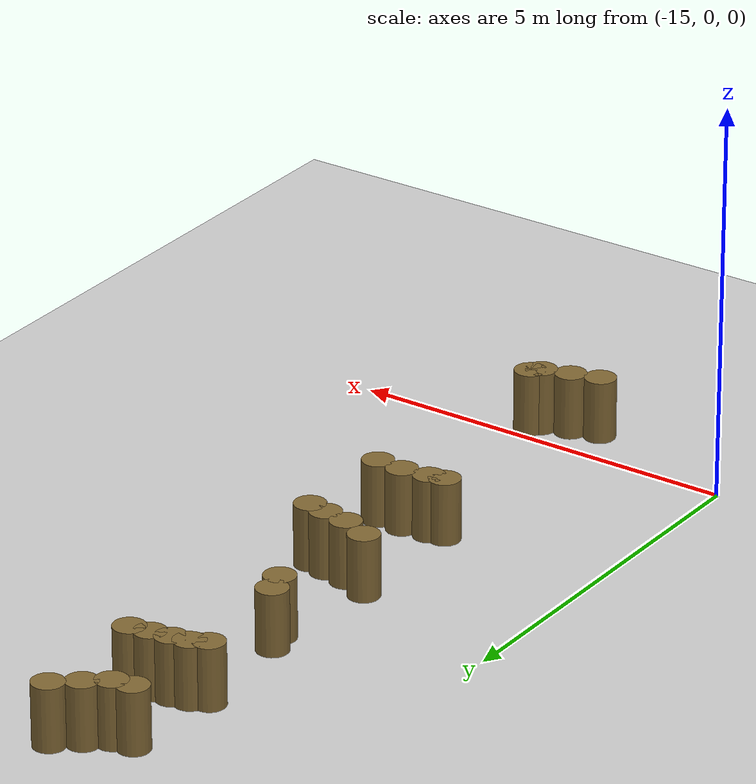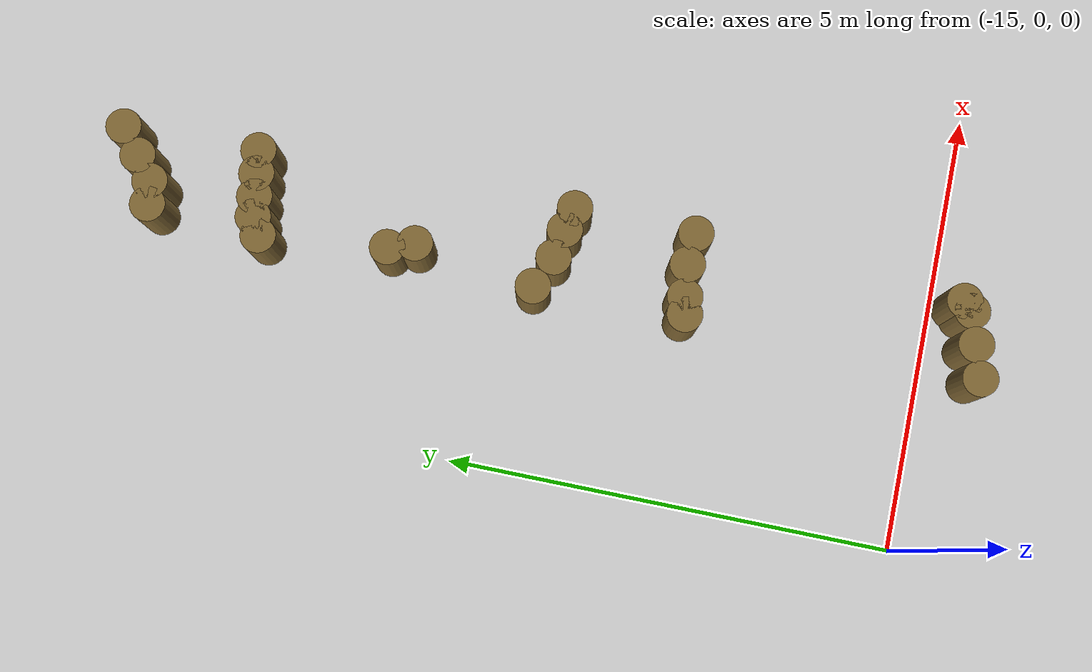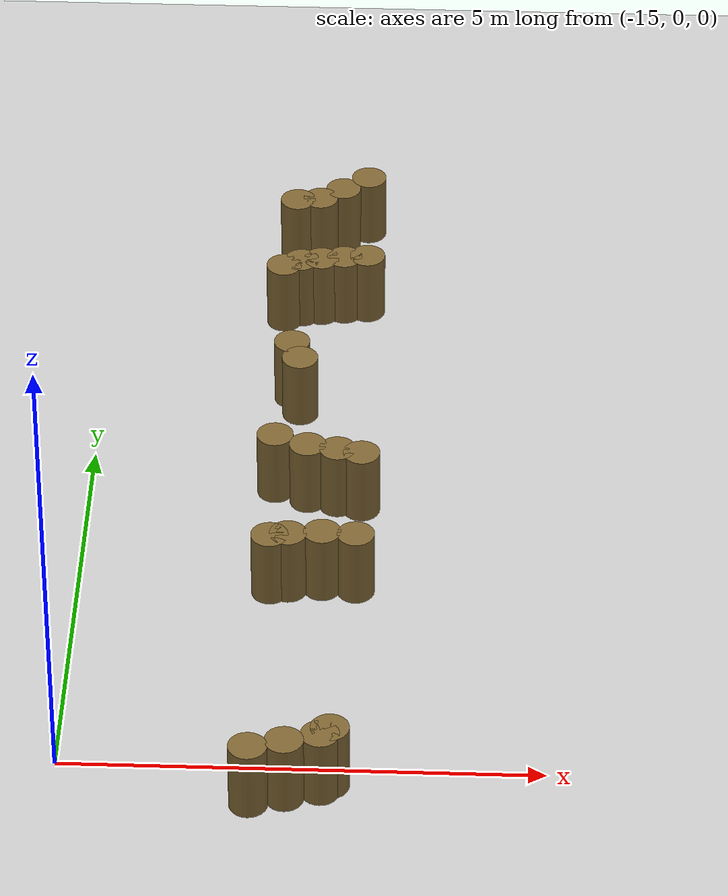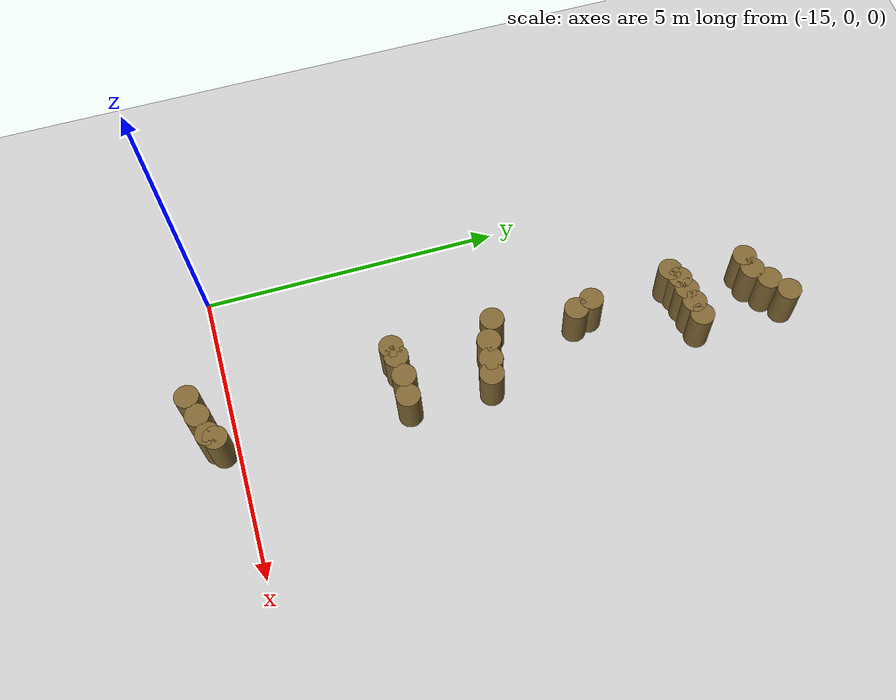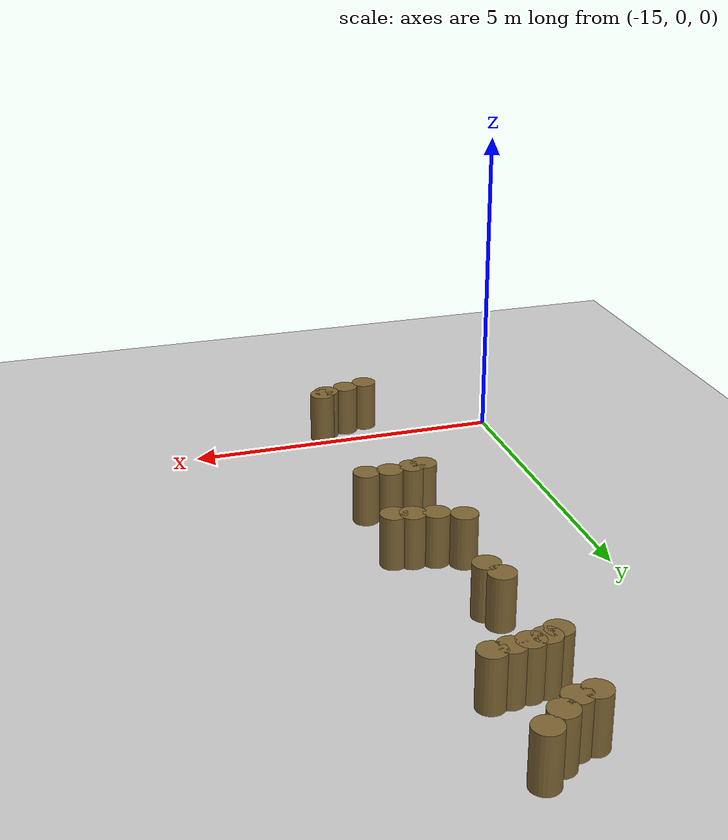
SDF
<sdf version="1.7">
 <world name="default">
  <model name="ground_plane">
   <static>1</static>
   <link name="link">
    <collision name="collision">
     <geometry><plane><normal>0 0 1</normal><size>100 100</size></plane></geometry>
     <surface><friction><ode><mu>100</mu><mu2>50</mu2></ode></friction></surface>
    </collision>
    <visual name="visual">
     <cast_shadows>0</cast_shadows>
     <geometry><plane><normal>0 0 1</normal><size>100 100</size></plane></geometry>
     <material>
      <script><uri>file://media/materials/scripts/gazebo.material</uri><name>Gazebo/Grey</name></script>
     </material>
    </visual>
   </link>
  </model>
  <model name="mini_cylinder_0_clone_0_clone_clone_clone_clone_3_clone_20_clone_4">
   <link name="link">
    <inertial>
     <mass>1</mass>
     <inertia><ixx>0.145833</ixx><ixy>0</ixy><ixz>0</ixz><iyy>0.145833</iyy><iyz>0</iyz><izz>0.125</izz></inertia>
    </inertial>
    <visual name="visual">
     <geometry><cylinder><radius>0.2</radius><length>0.8</length></cylinder></geometry>
     <material>
      <script><name>Gazebo/Grey</name><uri>file://media/materials/scripts/gazebo.material</uri></script>
      <shader type="vertex"><normal_map>__default__</normal_map></shader>
      <ambient>0.5 0.4 0.2 1</ambient>
      <diffuse>0.7 0.7 0.7 1</diffuse>
      <specular>0.01 0.01 0.01 1</specular>
      <emissive>0 0 0 1</emissive>
     </material>
    </visual>
    <collision name="collision">
     <geometry><cylinder><radius>0.2</radius><length>0.8</length></cylinder></geometry>
     <surface>
      <friction>
       <ode><mu>1</mu><mu2>1</mu2><fdir1>0 0 0</fdir1><slip1>0</slip1><slip2>0</slip2></ode>
       <torsional>
        <coefficient>1</coefficient>
        <patch_radius>0</patch_radius>
        <surface_radius>0</surface_radius>
        <use_patch_radius>1</use_patch_radius>
        <ode><slip>0</slip></ode>
       </torsional>
      </friction>
      <bounce><restitution_coefficient>0</restitution_coefficient><threshold>1e+06</threshold></bounce>
      <contact>
       <collide_without_contact>0</collide_without_contact>
       <collide_without_contact_bitmask>1</collide_without_contact_bitmask>
       <collide_bitmask>1</collide_bitmask>
       <ode>
        <soft_cfm>0</soft_cfm>
        <soft_erp>0.2</soft_erp>
        <kp>1e+13</kp>
        <kd>1</kd>
        <max_vel>0.01</max_vel>
        <min_depth>0</min_depth>
       </ode>
       <bullet>
        <split_impulse>1</split_impulse>
        <split_impulse_penetration_threshold>-0.01</split_impulse_penetration_threshold>
        <soft_cfm>0</soft_cfm>
        <soft_erp>0.2</soft_erp>
        <kp>1e+13</kp>
        <kd>1</kd>
       </bullet>
      </contact>
     </surface>
    </collision>
   </link>
   <static>1</static>
   <pose>-13 -0.531483 0.4 0 -0 0</pose>
  </model>
  <model name="mini_cylinder_0_clone_0_clone_clone_clone_clone_3_clone_20_clone_5">
   <link name="link">
    <inertial>
     <mass>1</mass>
     <inertia><ixx>0.145833</ixx><ixy>0</ixy><ixz>0</ixz><iyy>0.145833</iyy><iyz>0</iyz><izz>0.125</izz></inertia>
    </inertial>
    <visual name="visual">
     <geometry><cylinder><radius>0.2</radius><length>0.8</length></cylinder></geometry>
     <material>
      <script><name>Gazebo/Grey</name><uri>file://media/materials/scripts/gazebo.material</uri></script>
      <shader type="vertex"><normal_map>__default__</normal_map></shader>
      <ambient>0.5 0.4 0.2 1</ambient>
      <diffuse>0.7 0.7 0.7 1</diffuse>
      <specular>0.01 0.01 0.01 1</specular>
      <emissive>0 0 0 1</emissive>
     </material>
    </visual>
    <collision name="collision">
     <geometry><cylinder><radius>0.2</radius><length>0.8</length></cylinder></geometry>
     <surface>
      <friction>
       <ode><mu>1</mu><mu2>1</mu2><fdir1>0 0 0</fdir1><slip1>0</slip1><slip2>0</slip2></ode>
       <torsional>
        <coefficient>1</coefficient>
        <patch_radius>0</patch_radius>
        <surface_radius>0</surface_radius>
        <use_patch_radius>1</use_patch_radius>
        <ode><slip>0</slip></ode>
       </torsional>
      </friction>
      <bounce><restitution_coefficient>0</restitution_coefficient><threshold>1e+06</threshold></bounce>
      <contact>
       <collide_without_contact>0</collide_without_contact>
       <collide_without_contact_bitmask>1</collide_without_contact_bitmask>
       <collide_bitmask>1</collide_bitmask>
       <ode>
        <soft_cfm>0</soft_cfm>
        <soft_erp>0.2</soft_erp>
        <kp>1e+13</kp>
        <kd>1</kd>
        <max_vel>0.01</max_vel>
        <min_depth>0</min_depth>
       </ode>
       <bullet>
        <split_impulse>1</split_impulse>
        <split_impulse_penetration_threshold>-0.01</split_impulse_penetration_threshold>
        <soft_cfm>0</soft_cfm>
        <soft_erp>0.2</soft_erp>
        <kp>1e+13</kp>
        <kd>1</kd>
       </bullet>
      </contact>
     </surface>
    </collision>
   </link>
   <static>1</static>
   <pose>-12.6404 -0.428911 0.4 0 -0 0</pose>
  </model>
  <model name="mini_cylinder_0_clone_0_clone_clone_clone_clone_3_clone_20_clone_6">
   <link name="link">
    <inertial>
     <mass>1</mass>
     <inertia><ixx>0.145833</ixx><ixy>0</ixy><ixz>0</ixz><iyy>0.145833</iyy><iyz>0</iyz><izz>0.125</izz></inertia>
    </inertial>
    <visual name="visual">
     <geometry><cylinder><radius>0.2</radius><length>0.8</length></cylinder></geometry>
     <material>
      <script><name>Gazebo/Grey</name><uri>file://media/materials/scripts/gazebo.material</uri></script>
      <shader type="vertex"><normal_map>__default__</normal_map></shader>
      <ambient>0.5 0.4 0.2 1</ambient>
      <diffuse>0.7 0.7 0.7 1</diffuse>
      <specular>0.01 0.01 0.01 1</specular>
      <emissive>0 0 0 1</emissive>
     </material>
    </visual>
    <collision name="collision">
     <geometry><cylinder><radius>0.2</radius><length>0.8</length></cylinder></geometry>
     <surface>
      <friction>
       <ode><mu>1</mu><mu2>1</mu2><fdir1>0 0 0</fdir1><slip1>0</slip1><slip2>0</slip2></ode>
       <torsional>
        <coefficient>1</coefficient>
        <patch_radius>0</patch_radius>
        <surface_radius>0</surface_radius>
        <use_patch_radius>1</use_patch_radius>
        <ode><slip>0</slip></ode>
       </torsional>
      </friction>
      <bounce><restitution_coefficient>0</restitution_coefficient><threshold>1e+06</threshold></bounce>
      <contact>
       <collide_without_contact>0</collide_without_contact>
       <collide_without_contact_bitmask>1</collide_without_contact_bitmask>
       <collide_bitmask>1</collide_bitmask>
       <ode>
        <soft_cfm>0</soft_cfm>
        <soft_erp>0.2</soft_erp>
        <kp>1e+13</kp>
        <kd>1</kd>
        <max_vel>0.01</max_vel>
        <min_depth>0</min_depth>
       </ode>
       <bullet>
        <split_impulse>1</split_impulse>
        <split_impulse_penetration_threshold>-0.01</split_impulse_penetration_threshold>
        <soft_cfm>0</soft_cfm>
        <soft_erp>0.2</soft_erp>
        <kp>1e+13</kp>
        <kd>1</kd>
       </bullet>
      </contact>
     </surface>
    </collision>
   </link>
   <static>1</static>
   <pose>-12.2846 -0.325811 0.4 0 -0 0</pose>
  </model>
  <model name="mini_cylinder_0_clone_0_clone_clone_clone_clone_3_clone_20_clone_20">
   <link name="link">
    <inertial>
     <mass>1</mass>
     <inertia><ixx>0.145833</ixx><ixy>0</ixy><ixz>0</ixz><iyy>0.145833</iyy><iyz>0</iyz><izz>0.125</izz></inertia>
    </inertial>
    <visual name="visual">
     <geometry><cylinder><radius>0.2</radius><length>0.8</length></cylinder></geometry>
     <material>
      <script><name>Gazebo/Grey</name><uri>file://media/materials/scripts/gazebo.material</uri></script>
      <shader type="vertex"><normal_map>__default__</normal_map></shader>
      <ambient>0.5 0.4 0.2 1</ambient>
      <diffuse>0.7 0.7 0.7 1</diffuse>
      <specular>0.01 0.01 0.01 1</specular>
      <emissive>0 0 0 1</emissive>
     </material>
    </visual>
    <collision name="collision">
     <geometry><cylinder><radius>0.2</radius><length>0.8</length></cylinder></geometry>
     <surface>
      <friction>
       <ode><mu>1</mu><mu2>1</mu2><fdir1>0 0 0</fdir1><slip1>0</slip1><slip2>0</slip2></ode>
       <torsional>
        <coefficient>1</coefficient>
        <patch_radius>0</patch_radius>
        <surface_radius>0</surface_radius>
        <use_patch_radius>1</use_patch_radius>
        <ode><slip>0</slip></ode>
       </torsional>
      </friction>
      <bounce><restitution_coefficient>0</restitution_coefficient><threshold>1e+06</threshold></bounce>
      <contact>
       <collide_without_contact>0</collide_without_contact>
       <collide_without_contact_bitmask>1</collide_without_contact_bitmask>
       <collide_bitmask>1</collide_bitmask>
       <ode>
        <soft_cfm>0</soft_cfm>
        <soft_erp>0.2</soft_erp>
        <kp>1e+13</kp>
        <kd>1</kd>
        <max_vel>0.01</max_vel>
        <min_depth>0</min_depth>
       </ode>
       <bullet>
        <split_impulse>1</split_impulse>
        <split_impulse_penetration_threshold>-0.01</split_impulse_penetration_threshold>
        <soft_cfm>0</soft_cfm>
        <soft_erp>0.2</soft_erp>
        <kp>1e+13</kp>
        <kd>1</kd>
       </bullet>
      </contact>
     </surface>
    </collision>
   </link>
   <static>1</static>
   <pose>-12.0426 2.79993 0.4 0 -0 0</pose>
  </model>
  <model name="mini_cylinder_0_clone_0_clone_clone_clone_clone_3_clone_20_clone_21">
   <link name="link">
    <inertial>
     <mass>1</mass>
     <inertia><ixx>0.145833</ixx><ixy>0</ixy><ixz>0</ixz><iyy>0.145833</iyy><iyz>0</iyz><izz>0.125</izz></inertia>
    </inertial>
    <visual name="visual">
     <geometry><cylinder><radius>0.2</radius><length>0.8</length></cylinder></geometry>
     <material>
      <script><name>Gazebo/Grey</name><uri>file://media/materials/scripts/gazebo.material</uri></script>
      <shader type="vertex"><normal_map>__default__</normal_map></shader>
      <ambient>0.5 0.4 0.2 1</ambient>
      <diffuse>0.7 0.7 0.7 1</diffuse>
      <specular>0.01 0.01 0.01 1</specular>
      <emissive>0 0 0 1</emissive>
     </material>
    </visual>
    <collision name="collision">
     <geometry><cylinder><radius>0.2</radius><length>0.8</length></cylinder></geometry>
     <surface>
      <friction>
       <ode><mu>1</mu><mu2>1</mu2><fdir1>0 0 0</fdir1><slip1>0</slip1><slip2>0</slip2></ode>
       <torsional>
        <coefficient>1</coefficient>
        <patch_radius>0</patch_radius>
        <surface_radius>0</surface_radius>
        <use_patch_radius>1</use_patch_radius>
        <ode><slip>0</slip></ode>
       </torsional>
      </friction>
      <bounce><restitution_coefficient>0</restitution_coefficient><threshold>1e+06</threshold></bounce>
      <contact>
       <collide_without_contact>0</collide_without_contact>
       <collide_without_contact_bitmask>1</collide_without_contact_bitmask>
       <collide_bitmask>1</collide_bitmask>
       <ode>
        <soft_cfm>0</soft_cfm>
        <soft_erp>0.2</soft_erp>
        <kp>1e+13</kp>
        <kd>1</kd>
        <max_vel>0.01</max_vel>
        <min_depth>0</min_depth>
       </ode>
       <bullet>
        <split_impulse>1</split_impulse>
        <split_impulse_penetration_threshold>-0.01</split_impulse_penetration_threshold>
        <soft_cfm>0</soft_cfm>
        <soft_erp>0.2</soft_erp>
        <kp>1e+13</kp>
        <kd>1</kd>
       </bullet>
      </contact>
     </surface>
    </collision>
   </link>
   <static>1</static>
   <pose>-12.4008 2.82689 0.4 0 -0 0</pose>
  </model>
  <model name="mini_cylinder_0_clone_0_clone_clone_clone_clone_3_clone_20_clone_22">
   <link name="link">
    <inertial>
     <mass>1</mass>
     <inertia><ixx>0.145833</ixx><ixy>0</ixy><ixz>0</ixz><iyy>0.145833</iyy><iyz>0</iyz><izz>0.125</izz></inertia>
    </inertial>
    <visual name="visual">
     <geometry><cylinder><radius>0.2</radius><length>0.8</length></cylinder></geometry>
     <material>
      <script><name>Gazebo/Grey</name><uri>file://media/materials/scripts/gazebo.material</uri></script>
      <shader type="vertex"><normal_map>__default__</normal_map></shader>
      <ambient>0.5 0.4 0.2 1</ambient>
      <diffuse>0.7 0.7 0.7 1</diffuse>
      <specular>0.01 0.01 0.01 1</specular>
      <emissive>0 0 0 1</emissive>
     </material>
    </visual>
    <collision name="collision">
     <geometry><cylinder><radius>0.2</radius><length>0.8</length></cylinder></geometry>
     <surface>
      <friction>
       <ode><mu>1</mu><mu2>1</mu2><fdir1>0 0 0</fdir1><slip1>0</slip1><slip2>0</slip2></ode>
       <torsional>
        <coefficient>1</coefficient>
        <patch_radius>0</patch_radius>
        <surface_radius>0</surface_radius>
        <use_patch_radius>1</use_patch_radius>
        <ode><slip>0</slip></ode>
       </torsional>
      </friction>
      <bounce><restitution_coefficient>0</restitution_coefficient><threshold>1e+06</threshold></bounce>
      <contact>
       <collide_without_contact>0</collide_without_contact>
       <collide_without_contact_bitmask>1</collide_without_contact_bitmask>
       <collide_bitmask>1</collide_bitmask>
       <ode>
        <soft_cfm>0</soft_cfm>
        <soft_erp>0.2</soft_erp>
        <kp>1e+13</kp>
        <kd>1</kd>
        <max_vel>0.01</max_vel>
        <min_depth>0</min_depth>
       </ode>
       <bullet>
        <split_impulse>1</split_impulse>
        <split_impulse_penetration_threshold>-0.01</split_impulse_penetration_threshold>
        <soft_cfm>0</soft_cfm>
        <soft_erp>0.2</soft_erp>
        <kp>1e+13</kp>
        <kd>1</kd>
       </bullet>
      </contact>
     </surface>
    </collision>
   </link>
   <static>1</static>
   <pose>-12.7576 2.7888 0.4 0 -0 0</pose>
  </model>
  <model name="mini_cylinder_0_clone_0_clone_clone_clone_clone_3_clone_20_clone_36">
   <link name="link">
    <inertial>
     <mass>1</mass>
     <inertia><ixx>0.145833</ixx><ixy>0</ixy><ixz>0</ixz><iyy>0.145833</iyy><iyz>0</iyz><izz>0.125</izz></inertia>
    </inertial>
    <visual name="visual">
     <geometry><cylinder><radius>0.2</radius><length>0.8</length></cylinder></geometry>
     <material>
      <script><name>Gazebo/Grey</name><uri>file://media/materials/scripts/gazebo.material</uri></script>
      <shader type="vertex"><normal_map>__default__</normal_map></shader>
      <ambient>0.5 0.4 0.2 1</ambient>
      <diffuse>0.7 0.7 0.7 1</diffuse>
      <specular>0.01 0.01 0.01 1</specular>
      <emissive>0 0 0 1</emissive>
     </material>
    </visual>
    <collision name="collision">
     <geometry><cylinder><radius>0.2</radius><length>0.8</length></cylinder></geometry>
     <surface>
      <friction>
       <ode><mu>1</mu><mu2>1</mu2><fdir1>0 0 0</fdir1><slip1>0</slip1><slip2>0</slip2></ode>
       <torsional>
        <coefficient>1</coefficient>
        <patch_radius>0</patch_radius>
        <surface_radius>0</surface_radius>
        <use_patch_radius>1</use_patch_radius>
        <ode><slip>0</slip></ode>
       </torsional>
      </friction>
      <bounce><restitution_coefficient>0</restitution_coefficient><threshold>1e+06</threshold></bounce>
      <contact>
       <collide_without_contact>0</collide_without_contact>
       <collide_without_contact_bitmask>1</collide_without_contact_bitmask>
       <collide_bitmask>1</collide_bitmask>
       <ode>
        <soft_cfm>0</soft_cfm>
        <soft_erp>0.2</soft_erp>
        <kp>1e+13</kp>
        <kd>1</kd>
        <max_vel>0.01</max_vel>
        <min_depth>0</min_depth>
       </ode>
       <bullet>
        <split_impulse>1</split_impulse>
        <split_impulse_penetration_threshold>-0.01</split_impulse_penetration_threshold>
        <soft_cfm>0</soft_cfm>
        <soft_erp>0.2</soft_erp>
        <kp>1e+13</kp>
        <kd>1</kd>
       </bullet>
      </contact>
     </surface>
    </collision>
   </link>
   <static>1</static>
   <pose>-12.1893 -0.226715 0.4 0 -0 0</pose>
  </model>
  <model name="mini_cylinder_0_clone_0_clone_clone_clone_clone_3_clone_20_clone_37">
   <link name="link">
    <inertial>
     <mass>1</mass>
     <inertia><ixx>0.145833</ixx><ixy>0</ixy><ixz>0</ixz><iyy>0.145833</iyy><iyz>0</iyz><izz>0.125</izz></inertia>
    </inertial>
    <visual name="visual">
     <geometry><cylinder><radius>0.2</radius><length>0.8</length></cylinder></geometry>
     <material>
      <script><name>Gazebo/Grey</name><uri>file://media/materials/scripts/gazebo.material</uri></script>
      <shader type="vertex"><normal_map>__default__</normal_map></shader>
      <ambient>0.5 0.4 0.2 1</ambient>
      <diffuse>0.7 0.7 0.7 1</diffuse>
      <specular>0.01 0.01 0.01 1</specular>
      <emissive>0 0 0 1</emissive>
     </material>
    </visual>
    <collision name="collision">
     <geometry><cylinder><radius>0.2</radius><length>0.8</length></cylinder></geometry>
     <surface>
      <friction>
       <ode><mu>1</mu><mu2>1</mu2><fdir1>0 0 0</fdir1><slip1>0</slip1><slip2>0</slip2></ode>
       <torsional>
        <coefficient>1</coefficient>
        <patch_radius>0</patch_radius>
        <surface_radius>0</surface_radius>
        <use_patch_radius>1</use_patch_radius>
        <ode><slip>0</slip></ode>
       </torsional>
      </friction>
      <bounce><restitution_coefficient>0</restitution_coefficient><threshold>1e+06</threshold></bounce>
      <contact>
       <collide_without_contact>0</collide_without_contact>
       <collide_without_contact_bitmask>1</collide_without_contact_bitmask>
       <collide_bitmask>1</collide_bitmask>
       <ode>
        <soft_cfm>0</soft_cfm>
        <soft_erp>0.2</soft_erp>
        <kp>1e+13</kp>
        <kd>1</kd>
        <max_vel>0.01</max_vel>
        <min_depth>0</min_depth>
       </ode>
       <bullet>
        <split_impulse>1</split_impulse>
        <split_impulse_penetration_threshold>-0.01</split_impulse_penetration_threshold>
        <soft_cfm>0</soft_cfm>
        <soft_erp>0.2</soft_erp>
        <kp>1e+13</kp>
        <kd>1</kd>
       </bullet>
      </contact>
     </surface>
    </collision>
   </link>
   <static>1</static>
   <pose>-12.9523 2.75298 0.4 0 -0 0</pose>
  </model>
  <model name="mini_cylinder_0_clone_0_clone_clone_clone_clone_3_clone_20_clone_41">
   <link name="link">
    <inertial>
     <mass>1</mass>
     <inertia><ixx>0.145833</ixx><ixy>0</ixy><ixz>0</ixz><iyy>0.145833</iyy><iyz>0</iyz><izz>0.125</izz></inertia>
    </inertial>
    <visual name="visual">
     <geometry><cylinder><radius>0.2</radius><length>0.8</length></cylinder></geometry>
     <material>
      <script><name>Gazebo/Grey</name><uri>file://media/materials/scripts/gazebo.material</uri></script>
      <shader type="vertex"><normal_map>__default__</normal_map></shader>
      <ambient>0.5 0.4 0.2 1</ambient>
      <diffuse>0.7 0.7 0.7 1</diffuse>
      <specular>0.01 0.01 0.01 1</specular>
      <emissive>0 0 0 1</emissive>
     </material>
    </visual>
    <collision name="collision">
     <geometry><cylinder><radius>0.2</radius><length>0.8</length></cylinder></geometry>
     <surface>
      <friction>
       <ode><mu>1</mu><mu2>1</mu2><fdir1>0 0 0</fdir1><slip1>0</slip1><slip2>0</slip2></ode>
       <torsional>
        <coefficient>1</coefficient>
        <patch_radius>0</patch_radius>
        <surface_radius>0</surface_radius>
        <use_patch_radius>1</use_patch_radius>
        <ode><slip>0</slip></ode>
       </torsional>
      </friction>
      <bounce><restitution_coefficient>0</restitution_coefficient><threshold>1e+06</threshold></bounce>
      <contact>
       <collide_without_contact>0</collide_without_contact>
       <collide_without_contact_bitmask>1</collide_without_contact_bitmask>
       <collide_bitmask>1</collide_bitmask>
       <ode>
        <soft_cfm>0</soft_cfm>
        <soft_erp>0.2</soft_erp>
        <kp>1e+13</kp>
        <kd>1</kd>
        <max_vel>0.01</max_vel>
        <min_depth>0</min_depth>
       </ode>
       <bullet>
        <split_impulse>1</split_impulse>
        <split_impulse_penetration_threshold>-0.01</split_impulse_penetration_threshold>
        <soft_cfm>0</soft_cfm>
        <soft_erp>0.2</soft_erp>
        <kp>1e+13</kp>
        <kd>1</kd>
       </bullet>
      </contact>
     </surface>
    </collision>
   </link>
   <static>1</static>
   <pose>-12.0326 4.16648 0.4 0 -0 0</pose>
  </model>
  <model name="mini_cylinder_0_clone_0_clone_clone_clone_clone_3_clone_20_clone_42">
   <link name="link">
    <inertial>
     <mass>1</mass>
     <inertia><ixx>0.145833</ixx><ixy>0</ixy><ixz>0</ixz><iyy>0.145833</iyy><iyz>0</iyz><izz>0.125</izz></inertia>
    </inertial>
    <visual name="visual">
     <geometry><cylinder><radius>0.2</radius><length>0.8</length></cylinder></geometry>
     <material>
      <script><name>Gazebo/Grey</name><uri>file://media/materials/scripts/gazebo.material</uri></script>
      <shader type="vertex"><normal_map>__default__</normal_map></shader>
      <ambient>0.5 0.4 0.2 1</ambient>
      <diffuse>0.7 0.7 0.7 1</diffuse>
      <specular>0.01 0.01 0.01 1</specular>
      <emissive>0 0 0 1</emissive>
     </material>
    </visual>
    <collision name="collision">
     <geometry><cylinder><radius>0.2</radius><length>0.8</length></cylinder></geometry>
     <surface>
      <friction>
       <ode><mu>1</mu><mu2>1</mu2><fdir1>0 0 0</fdir1><slip1>0</slip1><slip2>0</slip2></ode>
       <torsional>
        <coefficient>1</coefficient>
        <patch_radius>0</patch_radius>
        <surface_radius>0</surface_radius>
        <use_patch_radius>1</use_patch_radius>
        <ode><slip>0</slip></ode>
       </torsional>
      </friction>
      <bounce><restitution_coefficient>0</restitution_coefficient><threshold>1e+06</threshold></bounce>
      <contact>
       <collide_without_contact>0</collide_without_contact>
       <collide_without_contact_bitmask>1</collide_without_contact_bitmask>
       <collide_bitmask>1</collide_bitmask>
       <ode>
        <soft_cfm>0</soft_cfm>
        <soft_erp>0.2</soft_erp>
        <kp>1e+13</kp>
        <kd>1</kd>
        <max_vel>0.01</max_vel>
        <min_depth>0</min_depth>
       </ode>
       <bullet>
        <split_impulse>1</split_impulse>
        <split_impulse_penetration_threshold>-0.01</split_impulse_penetration_threshold>
        <soft_cfm>0</soft_cfm>
        <soft_erp>0.2</soft_erp>
        <kp>1e+13</kp>
        <kd>1</kd>
       </bullet>
      </contact>
     </surface>
    </collision>
   </link>
   <static>1</static>
   <pose>-12.2932 4.2275 0.4 0 -0 0</pose>
  </model>
  <model name="mini_cylinder_0_clone_0_clone_clone_clone_clone_3_clone_20_clone_43">
   <link name="link">
    <inertial>
     <mass>1</mass>
     <inertia><ixx>0.145833</ixx><ixy>0</ixy><ixz>0</ixz><iyy>0.145833</iyy><iyz>0</iyz><izz>0.125</izz></inertia>
    </inertial>
    <visual name="visual">
     <geometry><cylinder><radius>0.2</radius><length>0.8</length></cylinder></geometry>
     <material>
      <script><name>Gazebo/Grey</name><uri>file://media/materials/scripts/gazebo.material</uri></script>
      <shader type="vertex"><normal_map>__default__</normal_map></shader>
      <ambient>0.5 0.4 0.2 1</ambient>
      <diffuse>0.7 0.7 0.7 1</diffuse>
      <specular>0.01 0.01 0.01 1</specular>
      <emissive>0 0 0 1</emissive>
     </material>
    </visual>
    <collision name="collision">
     <geometry><cylinder><radius>0.2</radius><length>0.8</length></cylinder></geometry>
     <surface>
      <friction>
       <ode><mu>1</mu><mu2>1</mu2><fdir1>0 0 0</fdir1><slip1>0</slip1><slip2>0</slip2></ode>
       <torsional>
        <coefficient>1</coefficient>
        <patch_radius>0</patch_radius>
        <surface_radius>0</surface_radius>
        <use_patch_radius>1</use_patch_radius>
        <ode><slip>0</slip></ode>
       </torsional>
      </friction>
      <bounce><restitution_coefficient>0</restitution_coefficient><threshold>1e+06</threshold></bounce>
      <contact>
       <collide_without_contact>0</collide_without_contact>
       <collide_without_contact_bitmask>1</collide_without_contact_bitmask>
       <collide_bitmask>1</collide_bitmask>
       <ode>
        <soft_cfm>0</soft_cfm>
        <soft_erp>0.2</soft_erp>
        <kp>1e+13</kp>
        <kd>1</kd>
        <max_vel>0.01</max_vel>
        <min_depth>0</min_depth>
       </ode>
       <bullet>
        <split_impulse>1</split_impulse>
        <split_impulse_penetration_threshold>-0.01</split_impulse_penetration_threshold>
        <soft_cfm>0</soft_cfm>
        <soft_erp>0.2</soft_erp>
        <kp>1e+13</kp>
        <kd>1</kd>
       </bullet>
      </contact>
     </surface>
    </collision>
   </link>
   <static>1</static>
   <pose>-12.6192 4.28741 0.4 0 -0 0</pose>
  </model>
  <model name="mini_cylinder_0_clone_0_clone_clone_clone_clone_3_clone_20_clone_44">
   <link name="link">
    <inertial>
     <mass>1</mass>
     <inertia><ixx>0.145833</ixx><ixy>0</ixy><ixz>0</ixz><iyy>0.145833</iyy><iyz>0</iyz><izz>0.125</izz></inertia>
    </inertial>
    <visual name="visual">
     <geometry><cylinder><radius>0.2</radius><length>0.8</length></cylinder></geometry>
     <material>
      <script><name>Gazebo/Grey</name><uri>file://media/materials/scripts/gazebo.material</uri></script>
      <shader type="vertex"><normal_map>__default__</normal_map></shader>
      <ambient>0.5 0.4 0.2 1</ambient>
      <diffuse>0.7 0.7 0.7 1</diffuse>
      <specular>0.01 0.01 0.01 1</specular>
      <emissive>0 0 0 1</emissive>
     </material>
    </visual>
    <collision name="collision">
     <geometry><cylinder><radius>0.2</radius><length>0.8</length></cylinder></geometry>
     <surface>
      <friction>
       <ode><mu>1</mu><mu2>1</mu2><fdir1>0 0 0</fdir1><slip1>0</slip1><slip2>0</slip2></ode>
       <torsional>
        <coefficient>1</coefficient>
        <patch_radius>0</patch_radius>
        <surface_radius>0</surface_radius>
        <use_patch_radius>1</use_patch_radius>
        <ode><slip>0</slip></ode>
       </torsional>
      </friction>
      <bounce><restitution_coefficient>0</restitution_coefficient><threshold>1e+06</threshold></bounce>
      <contact>
       <collide_without_contact>0</collide_without_contact>
       <collide_without_contact_bitmask>1</collide_without_contact_bitmask>
       <collide_bitmask>1</collide_bitmask>
       <ode>
        <soft_cfm>0</soft_cfm>
        <soft_erp>0.2</soft_erp>
        <kp>1e+13</kp>
        <kd>1</kd>
        <max_vel>0.01</max_vel>
        <min_depth>0</min_depth>
       </ode>
       <bullet>
        <split_impulse>1</split_impulse>
        <split_impulse_penetration_threshold>-0.01</split_impulse_penetration_threshold>
        <soft_cfm>0</soft_cfm>
        <soft_erp>0.2</soft_erp>
        <kp>1e+13</kp>
        <kd>1</kd>
       </bullet>
      </contact>
     </surface>
    </collision>
   </link>
   <static>1</static>
   <pose>-12.9796 4.44444 0.4 0 -0 0</pose>
  </model>
  <model name="mini_cylinder_0_clone_0_clone_clone_clone_clone_3_clone_20_clone_52">
   <link name="link">
    <inertial>
     <mass>1</mass>
     <inertia><ixx>0.145833</ixx><ixy>0</ixy><ixz>0</ixz><iyy>0.145833</iyy><iyz>0</iyz><izz>0.125</izz></inertia>
    </inertial>
    <visual name="visual">
     <geometry><cylinder><radius>0.2</radius><length>0.8</length></cylinder></geometry>
     <material>
      <script><name>Gazebo/Grey</name><uri>file://media/materials/scripts/gazebo.material</uri></script>
      <shader type="vertex"><normal_map>__default__</normal_map></shader>
      <ambient>0.5 0.4 0.2 1</ambient>
      <diffuse>0.7 0.7 0.7 1</diffuse>
      <specular>0.01 0.01 0.01 1</specular>
      <emissive>0 0 0 1</emissive>
     </material>
    </visual>
    <collision name="collision">
     <geometry><cylinder><radius>0.2</radius><length>0.8</length></cylinder></geometry>
     <surface>
      <friction>
       <ode><mu>1</mu><mu2>1</mu2><fdir1>0 0 0</fdir1><slip1>0</slip1><slip2>0</slip2></ode>
       <torsional>
        <coefficient>1</coefficient>
        <patch_radius>0</patch_radius>
        <surface_radius>0</surface_radius>
        <use_patch_radius>1</use_patch_radius>
        <ode><slip>0</slip></ode>
       </torsional>
      </friction>
      <bounce><restitution_coefficient>0</restitution_coefficient><threshold>1e+06</threshold></bounce>
      <contact>
       <collide_without_contact>0</collide_without_contact>
       <collide_without_contact_bitmask>1</collide_without_contact_bitmask>
       <collide_bitmask>1</collide_bitmask>
       <ode>
        <soft_cfm>0</soft_cfm>
        <soft_erp>0.2</soft_erp>
        <kp>1e+13</kp>
        <kd>1</kd>
        <max_vel>0.01</max_vel>
        <min_depth>0</min_depth>
       </ode>
       <bullet>
        <split_impulse>1</split_impulse>
        <split_impulse_penetration_threshold>-0.01</split_impulse_penetration_threshold>
        <soft_cfm>0</soft_cfm>
        <soft_erp>0.2</soft_erp>
        <kp>1e+13</kp>
        <kd>1</kd>
       </bullet>
      </contact>
     </surface>
    </collision>
   </link>
   <static>1</static>
   <pose>-12.7744 5.81436 0.4 0 -0 0</pose>
  </model>
  <model name="mini_cylinder_0_clone_0_clone_clone_clone_clone_3_clone_20_clone_53">
   <link name="link">
    <inertial>
     <mass>1</mass>
     <inertia><ixx>0.145833</ixx><ixy>0</ixy><ixz>0</ixz><iyy>0.145833</iyy><iyz>0</iyz><izz>0.125</izz></inertia>
    </inertial>
    <visual name="visual">
     <geometry><cylinder><radius>0.2</radius><length>0.8</length></cylinder></geometry>
     <material>
      <script><name>Gazebo/Grey</name><uri>file://media/materials/scripts/gazebo.material</uri></script>
      <shader type="vertex"><normal_map>__default__</normal_map></shader>
      <ambient>0.5 0.4 0.2 1</ambient>
      <diffuse>0.7 0.7 0.7 1</diffuse>
      <specular>0.01 0.01 0.01 1</specular>
      <emissive>0 0 0 1</emissive>
     </material>
    </visual>
    <collision name="collision">
     <geometry><cylinder><radius>0.2</radius><length>0.8</length></cylinder></geometry>
     <surface>
      <friction>
       <ode><mu>1</mu><mu2>1</mu2><fdir1>0 0 0</fdir1><slip1>0</slip1><slip2>0</slip2></ode>
       <torsional>
        <coefficient>1</coefficient>
        <patch_radius>0</patch_radius>
        <surface_radius>0</surface_radius>
        <use_patch_radius>1</use_patch_radius>
        <ode><slip>0</slip></ode>
       </torsional>
      </friction>
      <bounce><restitution_coefficient>0</restitution_coefficient><threshold>1e+06</threshold></bounce>
      <contact>
       <collide_without_contact>0</collide_without_contact>
       <collide_without_contact_bitmask>1</collide_without_contact_bitmask>
       <collide_bitmask>1</collide_bitmask>
       <ode>
        <soft_cfm>0</soft_cfm>
        <soft_erp>0.2</soft_erp>
        <kp>1e+13</kp>
        <kd>1</kd>
        <max_vel>0.01</max_vel>
        <min_depth>0</min_depth>
       </ode>
       <bullet>
        <split_impulse>1</split_impulse>
        <split_impulse_penetration_threshold>-0.01</split_impulse_penetration_threshold>
        <soft_cfm>0</soft_cfm>
        <soft_erp>0.2</soft_erp>
        <kp>1e+13</kp>
        <kd>1</kd>
       </bullet>
      </contact>
     </surface>
    </collision>
   </link>
   <static>1</static>
   <pose>-12.8762 6.10548 0.4 0 -0 0</pose>
  </model>
  <model name="mini_cylinder_0_clone_0_clone_clone_clone_clone_3_clone_20_clone_60">
   <link name="link">
    <inertial>
     <mass>1</mass>
     <inertia><ixx>0.145833</ixx><ixy>0</ixy><ixz>0</ixz><iyy>0.145833</iyy><iyz>0</iyz><izz>0.125</izz></inertia>
    </inertial>
    <visual name="visual">
     <geometry><cylinder><radius>0.2</radius><length>0.8</length></cylinder></geometry>
     <material>
      <script><name>Gazebo/Grey</name><uri>file://media/materials/scripts/gazebo.material</uri></script>
      <shader type="vertex"><normal_map>__default__</normal_map></shader>
      <ambient>0.5 0.4 0.2 1</ambient>
      <diffuse>0.7 0.7 0.7 1</diffuse>
      <specular>0.01 0.01 0.01 1</specular>
      <emissive>0 0 0 1</emissive>
     </material>
    </visual>
    <collision name="collision">
     <geometry><cylinder><radius>0.2</radius><length>0.8</length></cylinder></geometry>
     <surface>
      <friction>
       <ode><mu>1</mu><mu2>1</mu2><fdir1>0 0 0</fdir1><slip1>0</slip1><slip2>0</slip2></ode>
       <torsional>
        <coefficient>1</coefficient>
        <patch_radius>0</patch_radius>
        <surface_radius>0</surface_radius>
        <use_patch_radius>1</use_patch_radius>
        <ode><slip>0</slip></ode>
       </torsional>
      </friction>
      <bounce><restitution_coefficient>0</restitution_coefficient><threshold>1e+06</threshold></bounce>
      <contact>
       <collide_without_contact>0</collide_without_contact>
       <collide_without_contact_bitmask>1</collide_without_contact_bitmask>
       <collide_bitmask>1</collide_bitmask>
       <ode>
        <soft_cfm>0</soft_cfm>
        <soft_erp>0.2</soft_erp>
        <kp>1e+13</kp>
        <kd>1</kd>
        <max_vel>0.01</max_vel>
        <min_depth>0</min_depth>
       </ode>
       <bullet>
        <split_impulse>1</split_impulse>
        <split_impulse_penetration_threshold>-0.01</split_impulse_penetration_threshold>
        <soft_cfm>0</soft_cfm>
        <soft_erp>0.2</soft_erp>
        <kp>1e+13</kp>
        <kd>1</kd>
       </bullet>
      </contact>
     </surface>
    </collision>
   </link>
   <static>1</static>
   <pose>-13.0347 7.53038 0.4 0 -0 0</pose>
  </model>
  <model name="mini_cylinder_0_clone_0_clone_clone_clone_clone_3_clone_20_clone_61">
   <link name="link">
    <inertial>
     <mass>1</mass>
     <inertia><ixx>0.145833</ixx><ixy>0</ixy><ixz>0</ixz><iyy>0.145833</iyy><iyz>0</iyz><izz>0.125</izz></inertia>
    </inertial>
    <visual name="visual">
     <geometry><cylinder><radius>0.2</radius><length>0.8</length></cylinder></geometry>
     <material>
      <script><name>Gazebo/Grey</name><uri>file://media/materials/scripts/gazebo.material</uri></script>
      <shader type="vertex"><normal_map>__default__</normal_map></shader>
      <ambient>0.5 0.4 0.2 1</ambient>
      <diffuse>0.7 0.7 0.7 1</diffuse>
      <specular>0.01 0.01 0.01 1</specular>
      <emissive>0 0 0 1</emissive>
     </material>
    </visual>
    <collision name="collision">
     <geometry><cylinder><radius>0.2</radius><length>0.8</length></cylinder></geometry>
     <surface>
      <friction>
       <ode><mu>1</mu><mu2>1</mu2><fdir1>0 0 0</fdir1><slip1>0</slip1><slip2>0</slip2></ode>
       <torsional>
        <coefficient>1</coefficient>
        <patch_radius>0</patch_radius>
        <surface_radius>0</surface_radius>
        <use_patch_radius>1</use_patch_radius>
        <ode><slip>0</slip></ode>
       </torsional>
      </friction>
      <bounce><restitution_coefficient>0</restitution_coefficient><threshold>1e+06</threshold></bounce>
      <contact>
       <collide_without_contact>0</collide_without_contact>
       <collide_without_contact_bitmask>1</collide_without_contact_bitmask>
       <collide_bitmask>1</collide_bitmask>
       <ode>
        <soft_cfm>0</soft_cfm>
        <soft_erp>0.2</soft_erp>
        <kp>1e+13</kp>
        <kd>1</kd>
        <max_vel>0.01</max_vel>
        <min_depth>0</min_depth>
       </ode>
       <bullet>
        <split_impulse>1</split_impulse>
        <split_impulse_penetration_threshold>-0.01</split_impulse_penetration_threshold>
        <soft_cfm>0</soft_cfm>
        <soft_erp>0.2</soft_erp>
        <kp>1e+13</kp>
        <kd>1</kd>
       </bullet>
      </contact>
     </surface>
    </collision>
   </link>
   <static>1</static>
   <pose>-12.6146 7.668 0.4 0 -0 0</pose>
  </model>
  <model name="mini_cylinder_0_clone_0_clone_clone_clone_clone_3_clone_20_clone_63">
   <link name="link">
    <inertial>
     <mass>1</mass>
     <inertia><ixx>0.145833</ixx><ixy>0</ixy><ixz>0</ixz><iyy>0.145833</iyy><iyz>0</iyz><izz>0.125</izz></inertia>
    </inertial>
    <visual name="visual">
     <geometry><cylinder><radius>0.2</radius><length>0.8</length></cylinder></geometry>
     <material>
      <script><name>Gazebo/Grey</name><uri>file://media/materials/scripts/gazebo.material</uri></script>
      <shader type="vertex"><normal_map>__default__</normal_map></shader>
      <ambient>0.5 0.4 0.2 1</ambient>
      <diffuse>0.7 0.7 0.7 1</diffuse>
      <specular>0.01 0.01 0.01 1</specular>
      <emissive>0 0 0 1</emissive>
     </material>
    </visual>
    <collision name="collision">
     <geometry><cylinder><radius>0.2</radius><length>0.8</length></cylinder></geometry>
     <surface>
      <friction>
       <ode><mu>1</mu><mu2>1</mu2><fdir1>0 0 0</fdir1><slip1>0</slip1><slip2>0</slip2></ode>
       <torsional>
        <coefficient>1</coefficient>
        <patch_radius>0</patch_radius>
        <surface_radius>0</surface_radius>
        <use_patch_radius>1</use_patch_radius>
        <ode><slip>0</slip></ode>
       </torsional>
      </friction>
      <bounce><restitution_coefficient>0</restitution_coefficient><threshold>1e+06</threshold></bounce>
      <contact>
       <collide_without_contact>0</collide_without_contact>
       <collide_without_contact_bitmask>1</collide_without_contact_bitmask>
       <collide_bitmask>1</collide_bitmask>
       <ode>
        <soft_cfm>0</soft_cfm>
        <soft_erp>0.2</soft_erp>
        <kp>1e+13</kp>
        <kd>1</kd>
        <max_vel>0.01</max_vel>
        <min_depth>0</min_depth>
       </ode>
       <bullet>
        <split_impulse>1</split_impulse>
        <split_impulse_penetration_threshold>-0.01</split_impulse_penetration_threshold>
        <soft_cfm>0</soft_cfm>
        <soft_erp>0.2</soft_erp>
        <kp>1e+13</kp>
        <kd>1</kd>
       </bullet>
      </contact>
     </surface>
    </collision>
   </link>
   <static>1</static>
   <pose>-12.8414 7.63132 0.4 0 -0 0</pose>
  </model>
  <model name="mini_cylinder_0_clone_0_clone_clone_clone_clone_3_clone_20_clone_64">
   <link name="link">
    <inertial>
     <mass>1</mass>
     <inertia><ixx>0.145833</ixx><ixy>0</ixy><ixz>0</ixz><iyy>0.145833</iyy><iyz>0</iyz><izz>0.125</izz></inertia>
    </inertial>
    <visual name="visual">
     <geometry><cylinder><radius>0.2</radius><length>0.8</length></cylinder></geometry>
     <material>
      <script><name>Gazebo/Grey</name><uri>file://media/materials/scripts/gazebo.material</uri></script>
      <shader type="vertex"><normal_map>__default__</normal_map></shader>
      <ambient>0.5 0.4 0.2 1</ambient>
      <diffuse>0.7 0.7 0.7 1</diffuse>
      <specular>0.01 0.01 0.01 1</specular>
      <emissive>0 0 0 1</emissive>
     </material>
    </visual>
    <collision name="collision">
     <geometry><cylinder><radius>0.2</radius><length>0.8</length></cylinder></geometry>
     <surface>
      <friction>
       <ode><mu>1</mu><mu2>1</mu2><fdir1>0 0 0</fdir1><slip1>0</slip1><slip2>0</slip2></ode>
       <torsional>
        <coefficient>1</coefficient>
        <patch_radius>0</patch_radius>
        <surface_radius>0</surface_radius>
        <use_patch_radius>1</use_patch_radius>
        <ode><slip>0</slip></ode>
       </torsional>
      </friction>
      <bounce><restitution_coefficient>0</restitution_coefficient><threshold>1e+06</threshold></bounce>
      <contact>
       <collide_without_contact>0</collide_without_contact>
       <collide_without_contact_bitmask>1</collide_without_contact_bitmask>
       <collide_bitmask>1</collide_bitmask>
       <ode>
        <soft_cfm>0</soft_cfm>
        <soft_erp>0.2</soft_erp>
        <kp>1e+13</kp>
        <kd>1</kd>
        <max_vel>0.01</max_vel>
        <min_depth>0</min_depth>
       </ode>
       <bullet>
        <split_impulse>1</split_impulse>
        <split_impulse_penetration_threshold>-0.01</split_impulse_penetration_threshold>
        <soft_cfm>0</soft_cfm>
        <soft_erp>0.2</soft_erp>
        <kp>1e+13</kp>
        <kd>1</kd>
       </bullet>
      </contact>
     </surface>
    </collision>
   </link>
   <static>1</static>
   <pose>-12.3554 7.70459 0.4 0 -0 0</pose>
  </model>
  <model name="mini_cylinder_0_clone_0_clone_clone_clone_clone_3_clone_20_clone_65">
   <link name="link">
    <inertial>
     <mass>1</mass>
     <inertia><ixx>0.145833</ixx><ixy>0</ixy><ixz>0</ixz><iyy>0.145833</iyy><iyz>0</iyz><izz>0.125</izz></inertia>
    </inertial>
    <visual name="visual">
     <geometry><cylinder><radius>0.2</radius><length>0.8</length></cylinder></geometry>
     <material>
      <script><name>Gazebo/Grey</name><uri>file://media/materials/scripts/gazebo.material</uri></script>
      <shader type="vertex"><normal_map>__default__</normal_map></shader>
      <ambient>0.5 0.4 0.2 1</ambient>
      <diffuse>0.7 0.7 0.7 1</diffuse>
      <specular>0.01 0.01 0.01 1</specular>
      <emissive>0 0 0 1</emissive>
     </material>
    </visual>
    <collision name="collision">
     <geometry><cylinder><radius>0.2</radius><length>0.8</length></cylinder></geometry>
     <surface>
      <friction>
       <ode><mu>1</mu><mu2>1</mu2><fdir1>0 0 0</fdir1><slip1>0</slip1><slip2>0</slip2></ode>
       <torsional>
        <coefficient>1</coefficient>
        <patch_radius>0</patch_radius>
        <surface_radius>0</surface_radius>
        <use_patch_radius>1</use_patch_radius>
        <ode><slip>0</slip></ode>
       </torsional>
      </friction>
      <bounce><restitution_coefficient>0</restitution_coefficient><threshold>1e+06</threshold></bounce>
      <contact>
       <collide_without_contact>0</collide_without_contact>
       <collide_without_contact_bitmask>1</collide_without_contact_bitmask>
       <collide_bitmask>1</collide_bitmask>
       <ode>
        <soft_cfm>0</soft_cfm>
        <soft_erp>0.2</soft_erp>
        <kp>1e+13</kp>
        <kd>1</kd>
        <max_vel>0.01</max_vel>
        <min_depth>0</min_depth>
       </ode>
       <bullet>
        <split_impulse>1</split_impulse>
        <split_impulse_penetration_threshold>-0.01</split_impulse_penetration_threshold>
        <soft_cfm>0</soft_cfm>
        <soft_erp>0.2</soft_erp>
        <kp>1e+13</kp>
        <kd>1</kd>
       </bullet>
      </contact>
     </surface>
    </collision>
   </link>
   <static>1</static>
   <pose>-12.0949 7.74118 0.4 0 -0 0</pose>
  </model>
  <model name="mini_cylinder_0_clone_0_clone_clone_clone_clone_3_clone_20_clone_81">
   <link name="link">
    <inertial>
     <mass>1</mass>
     <inertia><ixx>0.145833</ixx><ixy>0</ixy><ixz>0</ixz><iyy>0.145833</iyy><iyz>0</iyz><izz>0.125</izz></inertia>
    </inertial>
    <visual name="visual">
     <geometry><cylinder><radius>0.2</radius><length>0.8</length></cylinder></geometry>
     <material>
      <script><name>Gazebo/Grey</name><uri>file://media/materials/scripts/gazebo.material</uri></script>
      <shader type="vertex"><normal_map>__default__</normal_map></shader>
      <ambient>0.5 0.4 0.2 1</ambient>
      <diffuse>0.7 0.7 0.7 1</diffuse>
      <specular>0.01 0.01 0.01 1</specular>
      <emissive>0 0 0 1</emissive>
     </material>
    </visual>
    <collision name="collision">
     <geometry><cylinder><radius>0.2</radius><length>0.8</length></cylinder></geometry>
     <surface>
      <friction>
       <ode><mu>1</mu><mu2>1</mu2><fdir1>0 0 0</fdir1><slip1>0</slip1><slip2>0</slip2></ode>
       <torsional>
        <coefficient>1</coefficient>
        <patch_radius>0</patch_radius>
        <surface_radius>0</surface_radius>
        <use_patch_radius>1</use_patch_radius>
        <ode><slip>0</slip></ode>
       </torsional>
      </friction>
      <bounce><restitution_coefficient>0</restitution_coefficient><threshold>1e+06</threshold></bounce>
      <contact>
       <collide_without_contact>0</collide_without_contact>
       <collide_without_contact_bitmask>1</collide_without_contact_bitmask>
       <collide_bitmask>1</collide_bitmask>
       <ode>
        <soft_cfm>0</soft_cfm>
        <soft_erp>0.2</soft_erp>
        <kp>1e+13</kp>
        <kd>1</kd>
        <max_vel>0.01</max_vel>
        <min_depth>0</min_depth>
       </ode>
       <bullet>
        <split_impulse>1</split_impulse>
        <split_impulse_penetration_threshold>-0.01</split_impulse_penetration_threshold>
        <soft_cfm>0</soft_cfm>
        <soft_erp>0.2</soft_erp>
        <kp>1e+13</kp>
        <kd>1</kd>
       </bullet>
      </contact>
     </surface>
    </collision>
   </link>
   <static>1</static>
   <pose>-12.1303 9.27589 0.4 0 -0 0</pose>
  </model>
  <model name="mini_cylinder_0_clone_0_clone_clone_clone_clone_3_clone_20_clone_82">
   <link name="link">
    <inertial>
     <mass>1</mass>
     <inertia><ixx>0.145833</ixx><ixy>0</ixy><ixz>0</ixz><iyy>0.145833</iyy><iyz>0</iyz><izz>0.125</izz></inertia>
    </inertial>
    <visual name="visual">
     <geometry><cylinder><radius>0.2</radius><length>0.8</length></cylinder></geometry>
     <material>
      <script><name>Gazebo/Grey</name><uri>file://media/materials/scripts/gazebo.material</uri></script>
      <shader type="vertex"><normal_map>__default__</normal_map></shader>
      <ambient>0.5 0.4 0.2 1</ambient>
      <diffuse>0.7 0.7 0.7 1</diffuse>
      <specular>0.01 0.01 0.01 1</specular>
      <emissive>0 0 0 1</emissive>
     </material>
    </visual>
    <collision name="collision">
     <geometry><cylinder><radius>0.2</radius><length>0.8</length></cylinder></geometry>
     <surface>
      <friction>
       <ode><mu>1</mu><mu2>1</mu2><fdir1>0 0 0</fdir1><slip1>0</slip1><slip2>0</slip2></ode>
       <torsional>
        <coefficient>1</coefficient>
        <patch_radius>0</patch_radius>
        <surface_radius>0</surface_radius>
        <use_patch_radius>1</use_patch_radius>
        <ode><slip>0</slip></ode>
       </torsional>
      </friction>
      <bounce><restitution_coefficient>0</restitution_coefficient><threshold>1e+06</threshold></bounce>
      <contact>
       <collide_without_contact>0</collide_without_contact>
       <collide_without_contact_bitmask>1</collide_without_contact_bitmask>
       <collide_bitmask>1</collide_bitmask>
       <ode>
        <soft_cfm>0</soft_cfm>
        <soft_erp>0.2</soft_erp>
        <kp>1e+13</kp>
        <kd>1</kd>
        <max_vel>0.01</max_vel>
        <min_depth>0</min_depth>
       </ode>
       <bullet>
        <split_impulse>1</split_impulse>
        <split_impulse_penetration_threshold>-0.01</split_impulse_penetration_threshold>
        <soft_cfm>0</soft_cfm>
        <soft_erp>0.2</soft_erp>
        <kp>1e+13</kp>
        <kd>1</kd>
       </bullet>
      </contact>
     </surface>
    </collision>
   </link>
   <static>1</static>
   <pose>-12.4197 9.04399 0.4 0 -0 0</pose>
  </model>
  <model name="mini_cylinder_0_clone_0_clone_clone_clone_clone_3_clone_20_clone_83">
   <link name="link">
    <inertial>
     <mass>1</mass>
     <inertia><ixx>0.145833</ixx><ixy>0</ixy><ixz>0</ixz><iyy>0.145833</iyy><iyz>0</iyz><izz>0.125</izz></inertia>
    </inertial>
    <visual name="visual">
     <geometry><cylinder><radius>0.2</radius><length>0.8</length></cylinder></geometry>
     <material>
      <script><name>Gazebo/Grey</name><uri>file://media/materials/scripts/gazebo.material</uri></script>
      <shader type="vertex"><normal_map>__default__</normal_map></shader>
      <ambient>0.5 0.4 0.2 1</ambient>
      <diffuse>0.7 0.7 0.7 1</diffuse>
      <specular>0.01 0.01 0.01 1</specular>
      <emissive>0 0 0 1</emissive>
     </material>
    </visual>
    <collision name="collision">
     <geometry><cylinder><radius>0.2</radius><length>0.8</length></cylinder></geometry>
     <surface>
      <friction>
       <ode><mu>1</mu><mu2>1</mu2><fdir1>0 0 0</fdir1><slip1>0</slip1><slip2>0</slip2></ode>
       <torsional>
        <coefficient>1</coefficient>
        <patch_radius>0</patch_radius>
        <surface_radius>0</surface_radius>
        <use_patch_radius>1</use_patch_radius>
        <ode><slip>0</slip></ode>
       </torsional>
      </friction>
      <bounce><restitution_coefficient>0</restitution_coefficient><threshold>1e+06</threshold></bounce>
      <contact>
       <collide_without_contact>0</collide_without_contact>
       <collide_without_contact_bitmask>1</collide_without_contact_bitmask>
       <collide_bitmask>1</collide_bitmask>
       <ode>
        <soft_cfm>0</soft_cfm>
        <soft_erp>0.2</soft_erp>
        <kp>1e+13</kp>
        <kd>1</kd>
        <max_vel>0.01</max_vel>
        <min_depth>0</min_depth>
       </ode>
       <bullet>
        <split_impulse>1</split_impulse>
        <split_impulse_penetration_threshold>-0.01</split_impulse_penetration_threshold>
        <soft_cfm>0</soft_cfm>
        <soft_erp>0.2</soft_erp>
        <kp>1e+13</kp>
        <kd>1</kd>
       </bullet>
      </contact>
     </surface>
    </collision>
   </link>
   <static>1</static>
   <pose>-12.6767 8.84445 0.4 0 -0 0</pose>
  </model>
  <model name="mini_cylinder_0_clone_0_clone_clone_clone_clone_3_clone_20_clone_84">
   <link name="link">
    <inertial>
     <mass>1</mass>
     <inertia><ixx>0.145833</ixx><ixy>0</ixy><ixz>0</ixz><iyy>0.145833</iyy><iyz>0</iyz><izz>0.125</izz></inertia>
    </inertial>
    <visual name="visual">
     <geometry><cylinder><radius>0.2</radius><length>0.8</length></cylinder></geometry>
     <material>
      <script><name>Gazebo/Grey</name><uri>file://media/materials/scripts/gazebo.material</uri></script>
      <shader type="vertex"><normal_map>__default__</normal_map></shader>
      <ambient>0.5 0.4 0.2 1</ambient>
      <diffuse>0.7 0.7 0.7 1</diffuse>
      <specular>0.01 0.01 0.01 1</specular>
      <emissive>0 0 0 1</emissive>
     </material>
    </visual>
    <collision name="collision">
     <geometry><cylinder><radius>0.2</radius><length>0.8</length></cylinder></geometry>
     <surface>
      <friction>
       <ode><mu>1</mu><mu2>1</mu2><fdir1>0 0 0</fdir1><slip1>0</slip1><slip2>0</slip2></ode>
       <torsional>
        <coefficient>1</coefficient>
        <patch_radius>0</patch_radius>
        <surface_radius>0</surface_radius>
        <use_patch_radius>1</use_patch_radius>
        <ode><slip>0</slip></ode>
       </torsional>
      </friction>
      <bounce><restitution_coefficient>0</restitution_coefficient><threshold>1e+06</threshold></bounce>
      <contact>
       <collide_without_contact>0</collide_without_contact>
       <collide_without_contact_bitmask>1</collide_without_contact_bitmask>
       <collide_bitmask>1</collide_bitmask>
       <ode>
        <soft_cfm>0</soft_cfm>
        <soft_erp>0.2</soft_erp>
        <kp>1e+13</kp>
        <kd>1</kd>
        <max_vel>0.01</max_vel>
        <min_depth>0</min_depth>
       </ode>
       <bullet>
        <split_impulse>1</split_impulse>
        <split_impulse_penetration_threshold>-0.01</split_impulse_penetration_threshold>
        <soft_cfm>0</soft_cfm>
        <soft_erp>0.2</soft_erp>
        <kp>1e+13</kp>
        <kd>1</kd>
       </bullet>
      </contact>
     </surface>
    </collision>
   </link>
   <static>1</static>
   <pose>-12.9368 8.80782 0.4 0 -0 0</pose>
  </model>
 </world>
</sdf>
